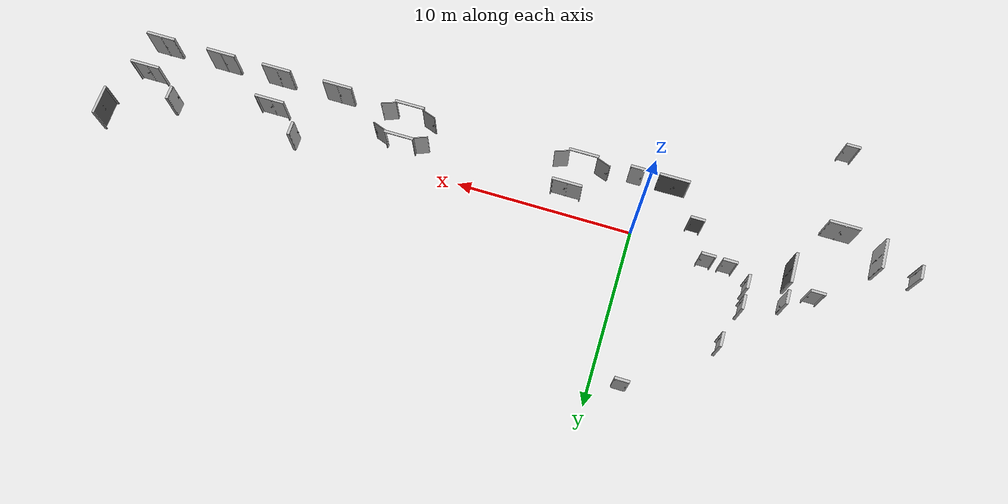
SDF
<sdf version="1.6">
 <world name="default">
  <gravity>0 0 -9.8</gravity>
  <physics default="0" name="default_physics" type="ode">
   <max_step_size>0.001</max_step_size>
   <real_time_factor>1</real_time_factor>
   <real_time_update_rate>1000</real_time_update_rate>
  </physics>
  <model name="door_70_close_13">
   <include><uri>model://models/door_70_close</uri></include>
   <pose>-5.878 5.014 0 0 0 -1.5708</pose>
  </model>
  <model name="door_70_close_04">
   <include><uri>model://models/door_70_close</uri></include>
   <pose>-1.51 8.538 0 0 0 3.14159</pose>
  </model>
  <model name="door_160_close_01">
   <include><uri>model://models/door_160_close</uri></include>
   <pose>4.058 -1.04 0 0 0 3.14159</pose>
  </model>
  <model name="door_160_fully_open_01">
   <include><uri>model://models/door_160_fully_open</uri></include>
   <pose>13.673 -1.04 0 0 0 3.14159</pose>
  </model>
  <model name="door_160_close_02">
   <include><uri>model://models/door_160_close</uri></include>
   <pose>21.273 -1.04 0 0 0 3.14159</pose>
  </model>
  <model name="door_70_close_05">
   <include><uri>model://models/door_70_close</uri></include>
   <pose>19.51 0.3 0 0 0 -1.5708</pose>
  </model>
  <model name="door_160_close_03">
   <include><uri>model://models/door_160_close</uri></include>
   <pose>28.770 -1.04 0 0 0 3.14159</pose>
  </model>
  <model name="door_160_metal_close_03">
   <include><uri>model://models/door_160_metal_close</uri></include>
   <pose>30.32 1.738 0 0 0 -1.5708</pose>
  </model>
  <model name="door_70_close_06">
   <include><uri>model://models/door_70_close</uri></include>
   <pose>26.76 0.21 0 0 0 -1.5708</pose>
  </model>
  <model name="door_160_close_04">
   <include><uri>model://models/door_160_close</uri></include>
   <pose>28.620 -2.975 0 0 0 0</pose>
  </model>
  <model name="door_160_close_05">
   <include><uri>model://models/door_160_close</uri></include>
   <pose>24.96 -2.975 0 0 0 0</pose>
  </model>
  <model name="door_160_close_06">
   <include><uri>model://models/door_160_close</uri></include>
   <pose>21.601 -2.975 0 0 0 0</pose>
  </model>
  <model name="door_160_close_07">
   <include><uri>model://models/door_160_close</uri></include>
   <pose>17.955 -2.975 0 0 0 0</pose>
  </model>
  <model name="door_160_fully_open_02">
   <include><uri>model://models/door_160_fully_open</uri></include>
   <pose>13.673 -2.975 0 0 0 0</pose>
  </model>
  <model name="door_160_fully_open_03">
   <include><uri>model://models/door_160_fully_open</uri></include>
   <pose>3.63 -2.975 0 0 0 0</pose>
  </model>
  <model name="door_70_close_01">
   <include><uri>model://models/door_70_close</uri></include>
   <pose>0.590 -2.975 0 0 0 3.14159</pose>
  </model>
  <model name="door_160_metal_close_01">
   <include><uri>model://models/door_160_metal_close</uri></include>
   <pose>-1.484 -2.975 0 0 0 0</pose>
  </model>
  <model name="door_160_close_08">
   <include><uri>model://models/door_160_close</uri></include>
   <pose>-10.807 -2.975 0 0 0 0</pose>
  </model>
  <model name="door_70_close_07">
   <include><uri>model://models/door_70_close</uri></include>
   <pose>-10.4 -7.646 0 0 0 0</pose>
  </model>
  <model name="door_160_close_09">
   <include><uri>model://models/door_160_close</uri></include>
   <pose>-13.095 -2.0065 0 0 0 -1.5708</pose>
  </model>
  <model name="door_70_close_08">
   <include><uri>model://models/door_70_close</uri></include>
   <pose>-15.14 -1.55 0 0 0 -1.5708</pose>
  </model>
  <model name="door_160_metal_close_02">
   <include><uri>model://models/door_160_metal_close</uri></include>
   <pose>-8.672 0.145 0 0 0 -1.5708</pose>
  </model>
  <model name="door_70_close_02">
   <include><uri>model://models/door_70_close</uri></include>
   <pose>-8.672 1.82 0 0 0 1.5708</pose>
  </model>
  <model name="door_70_close_09">
   <include><uri>model://models/door_70_close</uri></include>
   <pose>-10.14 1.125 0 0 0 0</pose>
  </model>
  <model name="door_70_close_10">
   <include><uri>model://models/door_70_close</uri></include>
   <pose>-6.53 2.75 0 0 0 -1.5708</pose>
  </model>
  <model name="door_70_close_03">
   <include><uri>model://models/door_70_close</uri></include>
   <pose>-6.53 1.592 0 0 0 -1.5708</pose>
  </model>
  <model name="door_70_close_11">
   <include><uri>model://models/door_70_close</uri></include>
   <pose>-5.39 0.77 0 0 0 0</pose>
  </model>
  <model name="door_70_close_12">
   <include><uri>model://models/door_70_close</uri></include>
   <pose>-4.21 0.77 0 0 0 0</pose>
  </model>
  <model name="door_70_metal_close">
   <include><uri>model://models/door_70_metal_close</uri></include>
   <pose>-3.2 -1.04 0 0 0 0</pose>
  </model>
  <light name="ceiling_light_01" type="point">
   <pose>11 7 3.21824 0 0 0</pose>
   <diffuse>1 1 1 1</diffuse>
   <specular>1 1 1 1</specular>
   <intensity>0.2</intensity>
   <attenuation>
    <range>10</range>
    <constant>0.3</constant>
    <linear>0.01</linear>
    <quadratic>0.001</quadratic>
   </attenuation>
   <direction>0.1 0.1 -1</direction>
  </light>
  <light name="ceiling_light_02" type="point">
   <pose>14 7 3.21824 0 0 0</pose>
   <diffuse>1 1 1 1</diffuse>
   <specular>1 1 1 1</specular>
   <intensity>0.2</intensity>
   <attenuation>
    <range>10</range>
    <constant>0.3</constant>
    <linear>0.01</linear>
    <quadratic>0.001</quadratic>
   </attenuation>
   <direction>0.1 0.1 -1</direction>
  </light>
  <light name="ceiling_light_03" type="point">
   <pose>11 2 3.21824 0 0 0</pose>
   <diffuse>1 1 1 1</diffuse>
   <specular>1 1 1 1</specular>
   <intensity>0.2</intensity>
   <attenuation>
    <range>10</range>
    <constant>0.3</constant>
    <linear>0.01</linear>
    <quadratic>0.001</quadratic>
   </attenuation>
   <direction>0.1 0.1 -1</direction>
  </light>
  <light name="ceiling_light_04" type="point">
   <pose>14 2 3.21824 0 0 0</pose>
   <diffuse>1 1 1 1</diffuse>
   <specular>1 1 1 1</specular>
   <intensity>0.2</intensity>
   <attenuation>
    <range>10</range>
    <constant>0.3</constant>
    <linear>0.01</linear>
    <quadratic>0.001</quadratic>
   </attenuation>
   <direction>0.1 0.1 -1</direction>
  </light>
  <light name="ceiling_light_05" type="point">
   <pose>12.5 -6.2 3.21824 0 0 0</pose>
   <diffuse>1 1 1 1</diffuse>
   <specular>1 1 1 1</specular>
   <intensity>0.6</intensity>
   <attenuation>
    <range>6</range>
    <constant>0.3</constant>
    <linear>0.01</linear>
    <quadratic>0.001</quadratic>
   </attenuation>
   <direction>0.1 0.1 -1</direction>
  </light>
  <light name="ceiling_light_07" type="point">
   <pose>3.2 -4.3 3.21824 0 0 0</pose>
   <diffuse>1 1 1 1</diffuse>
   <specular>1 1 1 1</specular>
   <intensity>0.2</intensity>
   <attenuation>
    <range>9</range>
    <constant>0.3</constant>
    <linear>0.01</linear>
    <quadratic>0.001</quadratic>
   </attenuation>
   <direction>0.1 0.1 -1</direction>
  </light>
  <light name="ceiling_light_08" type="point">
   <pose>3.2 -8.3 3.21824 0 0 0</pose>
   <diffuse>1 1 1 1</diffuse>
   <specular>1 1 1 1</specular>
   <intensity>0.2</intensity>
   <attenuation>
    <range>9</range>
    <constant>0.3</constant>
    <linear>0.01</linear>
    <quadratic>0.001</quadratic>
   </attenuation>
   <direction>0.1 0.1 -1</direction>
  </light>
  <light name="ceiling_light_09" type="point">
   <pose>7.2 -4.3 3.21824 0 0 0</pose>
   <diffuse>1 1 1 1</diffuse>
   <specular>1 1 1 1</specular>
   <intensity>0.2</intensity>
   <attenuation>
    <range>9</range>
    <constant>0.3</constant>
    <linear>0.01</linear>
    <quadratic>0.001</quadratic>
   </attenuation>
   <direction>0.1 0.1 -1</direction>
  </light>
  <light name="ceiling_light_10" type="point">
   <pose>7.2 -8.3 3.21824 0 0 0</pose>
   <diffuse>1 1 1 1</diffuse>
   <specular>1 1 1 1</specular>
   <intensity>0.2</intensity>
   <attenuation>
    <range>9</range>
    <constant>0.3</constant>
    <linear>0.01</linear>
    <quadratic>0.001</quadratic>
   </attenuation>
   <direction>0.1 0.1 -1</direction>
  </light>
  <light name="ceiling_light_11" type="point">
   <pose>-1.5 -6.3 3.21824 0 0 0</pose>
   <diffuse>1 1 1 1</diffuse>
   <specular>1 1 1 1</specular>
   <intensity>0.4</intensity>
   <attenuation>
    <range>10</range>
    <constant>0.3</constant>
    <linear>0.01</linear>
    <quadratic>0.001</quadratic>
   </attenuation>
   <direction>0.1 0.1 -1</direction>
  </light>
  <light name="ceiling_light_12" type="point">
   <pose>-6 -6.3 3.21824 0 0 0</pose>
   <diffuse>1 1 1 1</diffuse>
   <specular>1 1 1 1</specular>
   <intensity>0.4</intensity>
   <attenuation>
    <range>10</range>
    <constant>0.3</constant>
    <linear>0.01</linear>
    <quadratic>0.001</quadratic>
   </attenuation>
   <direction>0.1 0.1 -1</direction>
  </light>
  <light name="ceiling_light_13" type="point">
   <pose>-12.5 -6.3 3.21824 0 0 0</pose>
   <diffuse>1 1 1 1</diffuse>
   <specular>1 1 1 1</specular>
   <intensity>0.4</intensity>
   <attenuation>
    <range>10</range>
    <constant>0.3</constant>
    <linear>0.01</linear>
    <quadratic>0.001</quadratic>
   </attenuation>
   <direction>0.1 0.1 -1</direction>
  </light>
  <light name="ceiling_light_14" type="point">
   <pose>-17 -6.3 3.21824 0 0 0</pose>
   <diffuse>1 1 1 1</diffuse>
   <specular>1 1 1 1</specular>
   <intensity>0.4</intensity>
   <attenuation>
    <range>10</range>
    <constant>0.3</constant>
    <linear>0.01</linear>
    <quadratic>0.001</quadratic>
   </attenuation>
   <direction>0.1 0.1 -1</direction>
  </light>
  <light name="ceiling_light_15" type="point">
   <pose>-10.1 -8.8 3.21824 0 0 0</pose>
   <diffuse>1 1 1 1</diffuse>
   <specular>1 1 1 1</specular>
   <intensity>0.5</intensity>
   <attenuation>
    <range>5</range>
    <constant>0.3</constant>
    <linear>0.01</linear>
    <quadratic>0.001</quadratic>
   </attenuation>
   <direction>0.1 0.1 -1</direction>
  </light>
  <light name="ceiling_light_16" type="point">
   <pose>-17 -2 3.21824 0 0 0</pose>
   <diffuse>1 1 1 1</diffuse>
   <specular>1 1 1 1</specular>
   <intensity>0.5</intensity>
   <attenuation>
    <range>5</range>
    <constant>0.3</constant>
    <linear>0.01</linear>
    <quadratic>0.001</quadratic>
   </attenuation>
   <direction>0.1 0.1 -1</direction>
  </light>
  <light name="ceiling_light_17" type="point">
   <pose>-16 2 3.21824 0 0 0</pose>
   <diffuse>1 1 1 1</diffuse>
   <specular>1 1 1 1</specular>
   <intensity>0.4</intensity>
   <attenuation>
    <range>10</range>
    <constant>0.3</constant>
    <linear>0.01</linear>
    <quadratic>0.001</quadratic>
   </attenuation>
   <direction>0.1 0.1 -1</direction>
  </light>
  <light name="ceiling_light_18" type="point">
   <pose>-16 7 3.21824 0 0 0</pose>
   <diffuse>1 1 1 1</diffuse>
   <specular>1 1 1 1</specular>
   <intensity>0.4</intensity>
   <attenuation>
    <range>10</range>
    <constant>0.3</constant>
    <linear>0.01</linear>
    <quadratic>0.001</quadratic>
   </attenuation>
   <direction>0.1 0.1 -1</direction>
  </light>
  <light name="ceiling_light_19" type="point">
   <pose>-10 2 3.21824 0 0 0</pose>
   <diffuse>1 1 1 1</diffuse>
   <specular>1 1 1 1</specular>
   <intensity>0.4</intensity>
   <attenuation>
    <range>5</range>
    <constant>0.3</constant>
    <linear>0.01</linear>
    <quadratic>0.001</quadratic>
   </attenuation>
   <direction>0.1 0.1 -1</direction>
  </light>
  <light name="ceiling_light_20" type="point">
   <pose>-11 0 3.21824 0 0 0</pose>
   <diffuse>1 1 1 1</diffuse>
   <specular>1 1 1 1</specular>
   <intensity>0.4</intensity>
   <attenuation>
    <range>5</range>
    <constant>0.3</constant>
    <linear>0.01</linear>
    <quadratic>0.001</quadratic>
   </attenuation>
   <direction>0.1 0.1 -1</direction>
  </light>
  <light name="ceiling_light_21" type="point">
   <pose>-5 2.8 3.21824 0 0 0</pose>
   <diffuse>1 1 1 1</diffuse>
   <specular>1 1 1 1</specular>
   <intensity>0.4</intensity>
   <attenuation>
    <range>5</range>
    <constant>0.3</constant>
    <linear>0.01</linear>
    <quadratic>0.001</quadratic>
   </attenuation>
   <direction>0.1 0.1 -1</direction>
  </light>
  <light name="ceiling_light_22" type="point">
   <pose>-5 1.5 3.21824 0 0 0</pose>
   <diffuse>1 1 1 1</diffuse>
   <specular>1 1 1 1</specular>
   <intensity>0.4</intensity>
   <attenuation>
    <range>5</range>
    <constant>0.3</constant>
    <linear>0.01</linear>
    <quadratic>0.001</quadratic>
   </attenuation>
   <direction>0.1 0.1 -1</direction>
  </light>
  <light name="ceiling_light_23" type="point">
   <pose>-4.3 0 3.21824 0 0 0</pose>
   <diffuse>1 1 1 1</diffuse>
   <specular>1 1 1 1</specular>
   <intensity>0.4</intensity>
   <attenuation>
    <range>5</range>
    <constant>0.3</constant>
    <linear>0.01</linear>
    <quadratic>0.001</quadratic>
   </attenuation>
   <direction>0.1 0.1 -1</direction>
  </light>
  <light name="ceiling_light_24" type="point">
   <pose>-5.3 0 3.21824 0 0 0</pose>
   <diffuse>1 1 1 1</diffuse>
   <specular>1 1 1 1</specular>
   <intensity>0.4</intensity>
   <attenuation>
    <range>5</range>
    <constant>0.3</constant>
    <linear>0.01</linear>
    <quadratic>0.001</quadratic>
   </attenuation>
   <direction>0.1 0.1 -1</direction>
  </light>
  <light name="ceiling_light_25" type="point">
   <pose>-7.8 1.4 3.21824 0 0 0</pose>
   <diffuse>1 1 1 1</diffuse>
   <specular>1 1 1 1</specular>
   <intensity>0.7</intensity>
   <attenuation>
    <range>5.5</range>
    <constant>0.3</constant>
    <linear>0.01</linear>
    <quadratic>0.001</quadratic>
   </attenuation>
   <direction>0.1 0.1 -1</direction>
  </light>
  <light name="ceiling_light_26" type="point">
   <pose>-11 -2 3.21824 0 0 0</pose>
   <diffuse>1 1 1 1</diffuse>
   <specular>1 1 1 1</specular>
   <intensity>0.7</intensity>
   <attenuation>
    <range>4.1</range>
    <constant>0.3</constant>
    <linear>0.01</linear>
    <quadratic>0.001</quadratic>
   </attenuation>
   <direction>0.1 0.1 -1</direction>
  </light>
  <light name="ceiling_light_27" type="point">
   <pose>-2 -2 3.21824 0 0 0</pose>
   <diffuse>1 1 1 1</diffuse>
   <specular>1 1 1 1</specular>
   <intensity>0.7</intensity>
   <attenuation>
    <range>5.7</range>
    <constant>0.3</constant>
    <linear>0.01</linear>
    <quadratic>0.001</quadratic>
   </attenuation>
   <direction>0.1 0.1 -1</direction>
  </light>
  <light name="ceiling_light_28" type="point">
   <pose>8.6 -2 3.21824 0 0 0</pose>
   <diffuse>1 1 1 1</diffuse>
   <specular>1 1 1 1</specular>
   <intensity>0.7</intensity>
   <attenuation>
    <range>8</range>
    <constant>0.3</constant>
    <linear>0.01</linear>
    <quadratic>0.001</quadratic>
   </attenuation>
   <direction>0.1 0.1 -1</direction>
  </light>
  <light name="ceiling_light_29" type="point">
   <pose>20 -2 3.21824 0 0 0</pose>
   <diffuse>1 1 1 1</diffuse>
   <specular>1 1 1 1</specular>
   <intensity>0.7</intensity>
   <attenuation>
    <range>11</range>
    <constant>0.3</constant>
    <linear>0.01</linear>
    <quadratic>0.001</quadratic>
   </attenuation>
   <direction>0.1 0.1 -1</direction>
  </light>
  <light name="ceiling_light_30" type="point">
   <pose>25 -2 3.21824 0 0 0</pose>
   <diffuse>1 1 1 1</diffuse>
   <specular>1 1 1 1</specular>
   <intensity>0.7</intensity>
   <attenuation>
    <range>10</range>
    <constant>0.3</constant>
    <linear>0.01</linear>
    <quadratic>0.001</quadratic>
   </attenuation>
   <direction>0.1 0.1 -1</direction>
  </light>
  <light name="ceiling_light_31" type="point">
   <pose>-1 5 3.21824 0 0 0</pose>
   <diffuse>1 1 1 1</diffuse>
   <specular>1 1 1 1</specular>
   <intensity>0.7</intensity>
   <attenuation>
    <range>10</range>
    <constant>0.3</constant>
    <linear>0.01</linear>
    <quadratic>0.001</quadratic>
   </attenuation>
   <direction>0.1 0.1 -1</direction>
  </light>
  <light name="ceiling_light_32" type="point">
   <pose>-0.5 9.2 3.21824 0 0 0</pose>
   <diffuse>1 1 1 1</diffuse>
   <specular>1 1 1 1</specular>
   <intensity>0.4</intensity>
   <attenuation>
    <range>10</range>
    <constant>0.3</constant>
    <linear>0.01</linear>
    <quadratic>0.001</quadratic>
   </attenuation>
   <direction>0.1 0.1 -1</direction>
  </light>
  <light name="ceiling_light_33" type="point">
   <pose>5 5 3.21824 0 0 0</pose>
   <diffuse>1 1 1 1</diffuse>
   <specular>1 1 1 1</specular>
   <intensity>0.7</intensity>
   <attenuation>
    <range>10</range>
    <constant>0.3</constant>
    <linear>0.01</linear>
    <quadratic>0.001</quadratic>
   </attenuation>
   <direction>0.1 0.1 -1</direction>
  </light>
  <light name="ceiling_light_34" type="point">
   <pose>20 5 3.21824 0 0 0</pose>
   <diffuse>1 1 1 1</diffuse>
   <specular>1 1 1 1</specular>
   <intensity>0.7</intensity>
   <attenuation>
    <range>10</range>
    <constant>0.3</constant>
    <linear>0.01</linear>
    <quadratic>0.001</quadratic>
   </attenuation>
   <direction>0.1 0.1 -1</direction>
  </light>
  <light name="ceiling_light_35" type="point">
   <pose>18 0 3.21824 0 0 0</pose>
   <diffuse>1 1 1 1</diffuse>
   <specular>1 1 1 1</specular>
   <intensity>0.4</intensity>
   <attenuation>
    <range>10</range>
    <constant>0.3</constant>
    <linear>0.01</linear>
    <quadratic>0.001</quadratic>
   </attenuation>
   <direction>0.1 0.1 -1</direction>
  </light>
  <light name="ceiling_light_36" type="point">
   <pose>27 5 3.21824 0 0 0</pose>
   <diffuse>1 1 1 1</diffuse>
   <specular>1 1 1 1</specular>
   <intensity>0.7</intensity>
   <attenuation>
    <range>10</range>
    <constant>0.3</constant>
    <linear>0.01</linear>
    <quadratic>0.001</quadratic>
   </attenuation>
   <direction>0.1 0.1 -1</direction>
  </light>
  <light name="ceiling_light_37" type="point">
   <pose>25 0 3.21824 0 0 0</pose>
   <diffuse>1 1 1 1</diffuse>
   <specular>1 1 1 1</specular>
   <intensity>0.4</intensity>
   <attenuation>
    <range>10</range>
    <constant>0.3</constant>
    <linear>0.01</linear>
    <quadratic>0.001</quadratic>
   </attenuation>
   <direction>0.1 0.1 -1</direction>
  </light>
  <light name="ceiling_light_38" type="point">
   <pose>28.5 -6 3.21824 0 0 0</pose>
   <diffuse>1 1 1 1</diffuse>
   <specular>1 1 1 1</specular>
   <intensity>0.6</intensity>
   <attenuation>
    <range>10</range>
    <constant>0.3</constant>
    <linear>0.01</linear>
    <quadratic>0.001</quadratic>
   </attenuation>
   <direction>0.1 0.1 -1</direction>
  </light>
  <light name="ceiling_light_39" type="point">
   <pose>25 -6 3.21824 0 0 0</pose>
   <diffuse>1 1 1 1</diffuse>
   <specular>1 1 1 1</specular>
   <intensity>0.6</intensity>
   <attenuation>
    <range>10</range>
    <constant>0.3</constant>
    <linear>0.01</linear>
    <quadratic>0.001</quadratic>
   </attenuation>
   <direction>0.1 0.1 -1</direction>
  </light>
  <light name="ceiling_light_40" type="point">
   <pose>21.5 -6 3.21824 0 0 0</pose>
   <diffuse>1 1 1 1</diffuse>
   <specular>1 1 1 1</specular>
   <intensity>0.6</intensity>
   <attenuation>
    <range>10</range>
    <constant>0.3</constant>
    <linear>0.01</linear>
    <quadratic>0.001</quadratic>
   </attenuation>
   <direction>0.1 0.1 -1</direction>
  </light>
  <light name="ceiling_light_41" type="point">
   <pose>18 -6 3.21824 0 0 0</pose>
   <diffuse>1 1 1 1</diffuse>
   <specular>1 1 1 1</specular>
   <intensity>0.6</intensity>
   <attenuation>
    <range>10</range>
    <constant>0.3</constant>
    <linear>0.01</linear>
    <quadratic>0.001</quadratic>
   </attenuation>
   <direction>0.1 0.1 -1</direction>
  </light>
  <light name="ceiling_light_42" type="point">
   <pose>-7.6 8 3.21824 0 0 0</pose>
   <diffuse>1 1 1 1</diffuse>
   <specular>1 1 1 1</specular>
   <intensity>0.6</intensity>
   <attenuation>
    <range>10</range>
    <constant>0.3</constant>
    <linear>0.01</linear>
    <quadratic>0.001</quadratic>
   </attenuation>
   <direction>0.1 0.1 -1</direction>
  </light>
  <light name="ceiling_light_43" type="point">
   <pose>-11 8 3.21824 0 0 0</pose>
   <diffuse>1 1 1 1</diffuse>
   <specular>1 1 1 1</specular>
   <intensity>0.6</intensity>
   <attenuation>
    <range>10</range>
    <constant>0.3</constant>
    <linear>0.01</linear>
    <quadratic>0.001</quadratic>
   </attenuation>
   <direction>0.1 0.1 -1</direction>
  </light>
  <light name="ceiling_light_44" type="point">
   <pose>-4.7 4.6 3.21824 0 0 0</pose>
   <diffuse>1 1 1 1</diffuse>
   <specular>1 1 1 1</specular>
   <intensity>0.4</intensity>
   <attenuation>
    <range>10</range>
    <constant>0.3</constant>
    <linear>0.01</linear>
    <quadratic>0.001</quadratic>
   </attenuation>
   <direction>0.1 0.1 -1</direction>
  </light>
 </world>
</sdf>

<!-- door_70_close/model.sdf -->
<sdf version="1.6">
  <model name='door_70_close'>
    <static>true</static>
    <link name="body">

        <visual name="visual">
          <geometry>
            <mesh><uri>model://models/door_70_close/meshes/door_70_close.dae</uri></mesh>
          </geometry>
        </visual>

        <collision name="collision">
          <geometry>
            <mesh><uri>model://models/door_70_close/meshes/door_70_close.dae</uri></mesh>
          </geometry>
        </collision>

    </link>
  </model>
</sdf>

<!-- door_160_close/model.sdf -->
<sdf version="1.6">
  <model name='door_160_close'>
    <static>true</static>
    <link name="body">

        <visual name="visual">
          <geometry>
            <mesh><uri>model://models/door_160_close/meshes/door_160_close.dae</uri></mesh>
          </geometry>
        </visual>

        <collision name="collision">
          <geometry>
            <mesh><uri>model://models/door_160_close/meshes/door_160_close.dae</uri></mesh>
          </geometry>
        </collision>

    </link>
  </model>
</sdf>

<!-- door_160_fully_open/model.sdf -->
<sdf version="1.6">
  <model name='door_160_fully_open'>
    <static>true</static>
    <link name="body">

        <visual name="visual">
          <geometry>
            <mesh><uri>model://models/door_160_fully_open/meshes/door_160_fully_open.dae</uri></mesh>
          </geometry>
        </visual>

        <collision name="collision">
          <geometry>
            <mesh><uri>model://models/door_160_fully_open/meshes/door_160_fully_open.dae</uri></mesh>
          </geometry>
        </collision>

    </link>
  </model>
</sdf>

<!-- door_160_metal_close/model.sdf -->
<sdf version="1.6">
  <model name='door_160_metal_close'>
    <static>true</static>
    <link name="body">

        <visual name="visual">
          <geometry>
            <mesh><uri>model://models/door_160_metal_close/meshes/door_160_metal_close.dae</uri></mesh>
          </geometry>
        </visual>

        <collision name="collision">
          <geometry>
            <mesh><uri>model://models/door_160_metal_close/meshes/door_160_metal_close.dae</uri></mesh>
          </geometry>
        </collision>

    </link>
  </model>
</sdf>

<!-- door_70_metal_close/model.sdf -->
<sdf version="1.6">
  <model name='door_70_metal_close'>
    <static>true</static>
    <link name="body">

        <visual name="visual">
          <geometry>
            <mesh><uri>model://models/door_70_metal_close/meshes/door_70_metal_close.dae</uri></mesh>
          </geometry>
        </visual>

        <collision name="collision">
          <geometry>
            <mesh><uri>model://models/door_70_metal_close/meshes/door_70_metal_close.dae</uri></mesh>
          </geometry>
        </collision>

    </link>
  </model>
</sdf>
